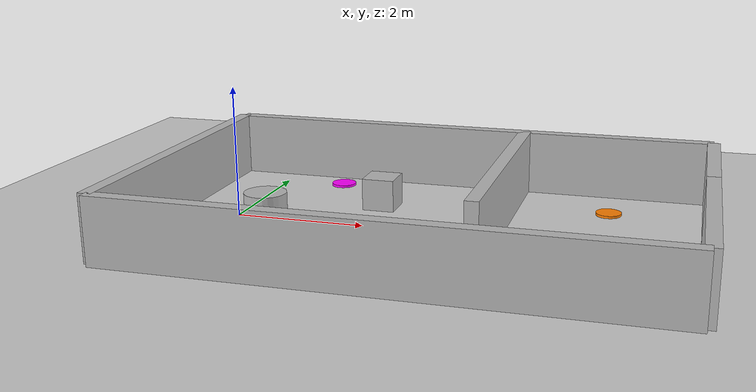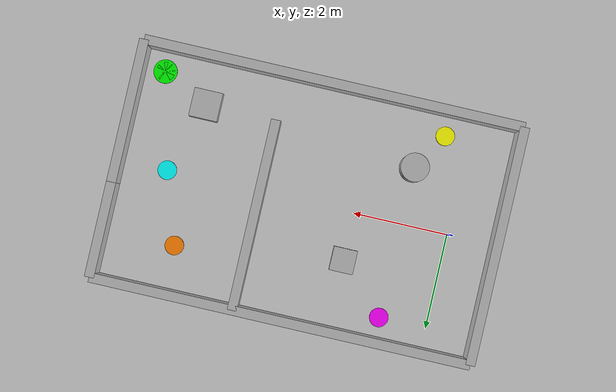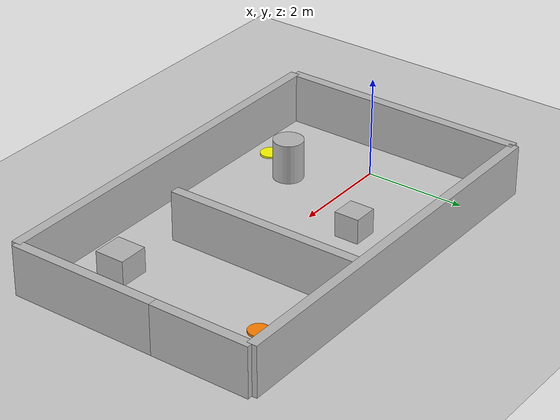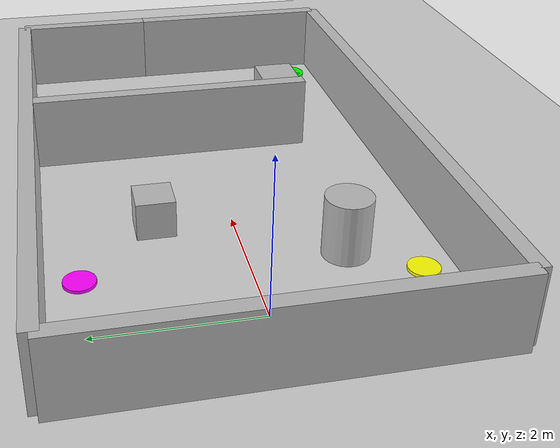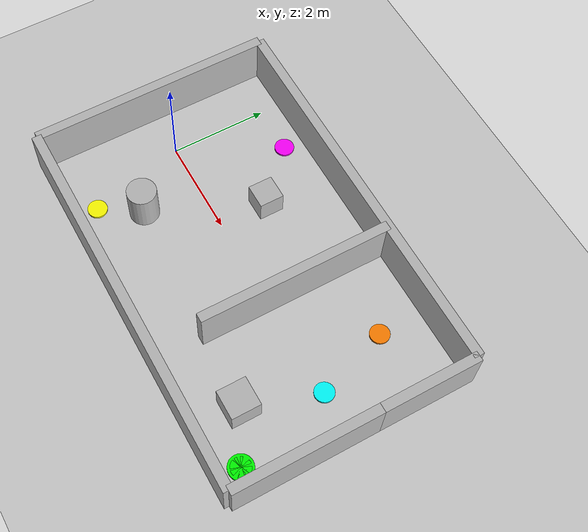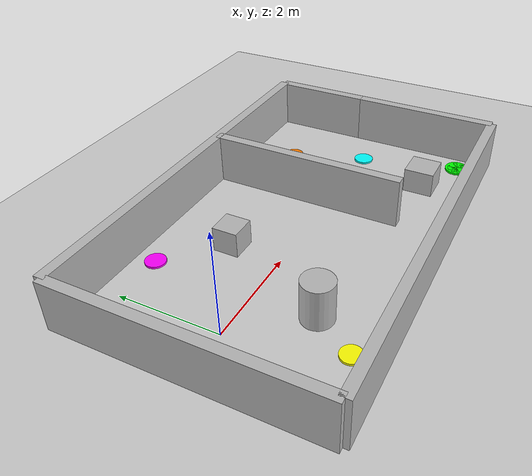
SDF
<?xml version="1.0"?>
<sdf version="1.6">
  <world name="default">
    <include><uri>model://sun</uri></include>
    <include><uri>model://ground_plane</uri></include>

    <!-- ===================== MURS EXTERIEURS (forme en L) ===================== -->
    <model name="wall_south">
      <static>true</static>
      <pose>3 -2.5 0.5 0 0 0</pose>
      <link name="link">
        <collision name="collision"><geometry><box><size>8 0.2 1</size></box></geometry></collision>
        <visual name="visual"><geometry><box><size>8 0.2 1</size></box></geometry></visual>
      </link>
    </model>

    <model name="wall_north_short">
      <static>true</static>
      <pose>3 2.5 0.5 0 0 0</pose>
      <link name="link">
        <collision name="collision"><geometry><box><size>8 0.2 1</size></box></geometry></collision>
        <visual name="visual"><geometry><box><size>8 0.2 1</size></box></geometry></visual>
      </link>
    </model>

    <model name="wall_west">
      <static>true</static>
      <pose>-1 0 0.5 0 0 0</pose>
      <link name="link">
        <collision name="collision"><geometry><box><size>0.2 5 1</size></box></geometry></collision>
        <visual name="visual"><geometry><box><size>0.2 5 1</size></box></geometry></visual>
      </link>
    </model>

    <model name="wall_east">
      <static>true</static>
      <pose>7 -1 0.5 0 0 0</pose>
      <link name="link">
        <collision name="collision"><geometry><box><size>0.2 3 1</size></box></geometry></collision>
        <visual name="visual"><geometry><box><size>0.2 3 1</size></box></geometry></visual>
      </link>
    </model>

    <model name="wall_east_upper">
      <static>true</static>
      <pose>7 1.5 0.5 0 0 0</pose>
      <link name="link">
        <collision name="collision"><geometry><box><size>0.2 2 1</size></box></geometry></collision>
        <visual name="visual"><geometry><box><size>0.2 2 1</size></box></geometry></visual>
      </link>
    </model>

    <model name="wall_middle_divider">
      <static>true</static>
      <pose>4 0.5 0.5 0 0 0</pose>
      <link name="link">
        <collision name="collision"><geometry><box><size>0.2 4 1</size></box></geometry></collision>
        <visual name="visual"><geometry><box><size>0.2 4 1</size></box></geometry></visual>
      </link>
    </model>

    <!-- ===================== OBSTACLES INTERIEURS ===================== -->
    <model name="box_obstacle_1">
      <static>true</static>
      <pose>2 1 0.25 0 0 0</pose>
      <link name="link">
        <collision name="collision"><geometry><box><size>0.5 0.5 0.5</size></box></geometry></collision>
        <visual name="visual"><geometry><box><size>0.5 0.5 0.5</size></box></geometry></visual>
      </link>
    </model>

    <model name="cylinder_obstacle_1">
      <static>true</static>
      <pose>1 -1.2 0.4 0 0 0</pose>
      <link name="link">
        <collision name="collision"><geometry><cylinder><radius>0.3</radius><length>0.8</length></cylinder></geometry></collision>
        <visual name="visual"><geometry><cylinder><radius>0.3</radius><length>0.8</length></cylinder></geometry></visual>
      </link>
    </model>

    <model name="box_obstacle_2">
      <static>true</static>
      <pose>5.5 -1.5 0.25 0 0 0</pose>
      <link name="link">
        <collision name="collision"><geometry><box><size>0.6 0.6 0.5</size></box></geometry></collision>
        <visual name="visual"><geometry><box><size>0.6 0.6 0.5</size></box></geometry></visual>
      </link>
    </model>

    <!-- ===================== MARQUEUR DU POINT D'ARRIVEE (visuel uniquement) ===================== -->
    <model name="goal_marker">
      <static>true</static>
      <pose>6.5 -2.0 0.02 0 0 0</pose>
      <link name="link">
        <visual name="visual">
          <geometry><cylinder><radius>0.25</radius><length>0.04</length></cylinder></geometry>
          <material>
            <ambient>0 1 0 1</ambient>
            <diffuse>0 1 0 1</diffuse>
          </material>
        </visual>
      </link>
    </model>

    <model name="goal_marker_g1">
      <static>true</static>
      <pose>5.5 1.5 0.02 0 0 0</pose>
      <link name="link">
        <visual name="visual">
          <geometry><cylinder><radius>0.2</radius><length>0.04</length></cylinder></geometry>
          <material>
            <ambient>1 0.5 0 1</ambient>
            <diffuse>1 0.5 0 1</diffuse>
          </material>
        </visual>
      </link>
    </model>

    <model name="goal_marker_g2">
      <static>true</static>
      <pose>6.5 -2.0 0.02 0 0 0</pose>
      <link name="link">
        <visual name="visual">
          <geometry><cylinder><radius>0.2</radius><length>0.04</length></cylinder></geometry>
          <material>
            <ambient>0 1 0 1</ambient>
            <diffuse>0 1 0 1</diffuse>
          </material>
        </visual>
      </link>
    </model>

    <model name="goal_marker_g3">
      <static>true</static>
      <pose>1.0 2.0 0.02 0 0 0</pose>
      <link name="link">
        <visual name="visual">
          <geometry><cylinder><radius>0.2</radius><length>0.04</length></cylinder></geometry>
          <material>
            <ambient>1 0 1 1</ambient>
            <diffuse>1 0 1 1</diffuse>
          </material>
        </visual>
      </link>
    </model>

    <model name="goal_marker_g4">
      <static>true</static>
      <pose>6.0 0.0 0.02 0 0 0</pose>
      <link name="link">
        <visual name="visual">
          <geometry><cylinder><radius>0.2</radius><length>0.04</length></cylinder></geometry>
          <material>
            <ambient>0 1 1 1</ambient>
            <diffuse>0 1 1 1</diffuse>
          </material>
        </visual>
      </link>
    </model>

    <model name="goal_marker_g5">
      <static>true</static>
      <pose>0.5 -2.0 0.02 0 0 0</pose>
      <link name="link">
        <visual name="visual">
          <geometry><cylinder><radius>0.2</radius><length>0.04</length></cylinder></geometry>
          <material>
            <ambient>1 1 0 1</ambient>
            <diffuse>1 1 0 1</diffuse>
          </material>
        </visual>
      </link>
    </model>

  </world>
</sdf>
